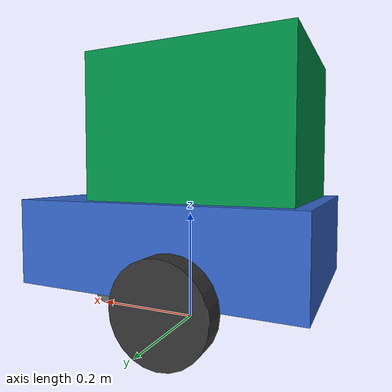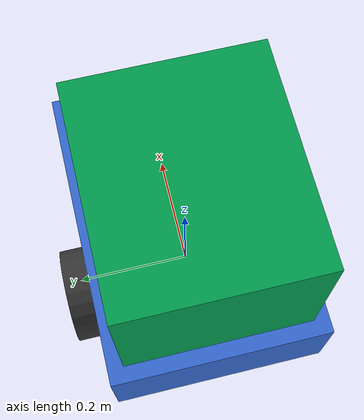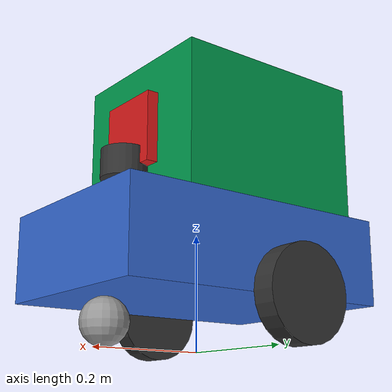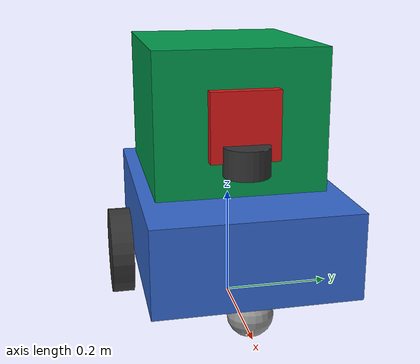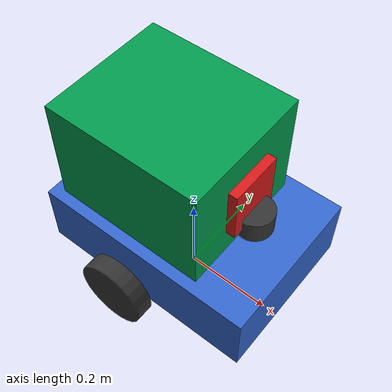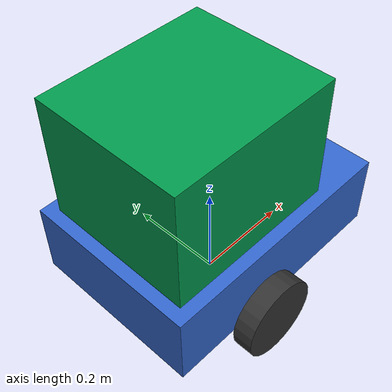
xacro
<?xml version="1.0"?>
<robot xmlns:xacro="http://www.ros.org/wiki/xacro" name="medbot">

  <!-- ==================== ARGUMENTS ==================== -->
  <xacro:arg name="use_sim" default="true"/>
  <xacro:arg name="use_ros2_control" default="true"/>

  <!-- ==================== INCLUDES ==================== -->
  <xacro:include filename="$(find medbot_description)/urdf/materials.xacro"/>
  <xacro:include filename="$(find medbot_description)/urdf/robot_core.xacro"/>
  <xacro:include filename="$(find medbot_description)/urdf/sensors/lidar.xacro"/>
  <xacro:include filename="$(find medbot_description)/urdf/sensors/camera.xacro"/>
  <xacro:include filename="$(find medbot_description)/urdf/sensors/imu.xacro"/>
  <xacro:include filename="$(find medbot_description)/urdf/gazebo_control.xacro"/>

  <!-- ==================== ROBOT ASSEMBLY ==================== -->

  <!-- Base Robot Structure -->
  <xacro:robot_core/>

  <!-- Sensor Suite -->
  <xacro:lidar_sensor parent="base_link">
    <origin xyz="0.15 0 0.30" rpy="0 0 0"/>
  </xacro:lidar_sensor>

  <xacro:camera_sensor parent="base_link">
    <origin xyz="0.20 0 0.15" rpy="0 0 0"/>
  </xacro:camera_sensor>

  <xacro:imu_sensor parent="base_link">
    <origin xyz="0 0 0.1" rpy="0 0 0"/>
  </xacro:imu_sensor>

  <!-- Gazebo Control Plugin -->
  <xacro:gazebo_control use_sim="$(arg use_sim)"/>

</robot>

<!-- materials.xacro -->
<!--
  Material Definitions for Medical Delivery Robot
  Module Owner: Abel (Modeling)

  Contains color and material properties for robot visualization.
-->
<robot xmlns:xacro="http://www.ros.org/wiki/xacro">

  <!-- ==================== RVIZ MATERIALS ==================== -->

  <!-- Primary Robot Colors -->
  <material name="white">
    <color rgba="1.0 1.0 1.0 1.0"/>
  </material>

  <material name="medbot_blue">
    <color rgba="0.2 0.4 0.8 1.0"/>
  </material>

  <material name="medbot_green">
    <color rgba="0.0 0.7 0.3 1.0"/>
  </material>

  <material name="dark_grey">
    <color rgba="0.2 0.2 0.2 1.0"/>
  </material>

  <material name="light_grey">
    <color rgba="0.6 0.6 0.6 1.0"/>
  </material>

  <material name="red">
    <color rgba="0.9 0.1 0.1 1.0"/>
  </material>

  <material name="orange">
    <color rgba="1.0 0.5 0.0 1.0"/>
  </material>

  <material name="black">
    <color rgba="0.1 0.1 0.1 1.0"/>
  </material>

  <!-- Medical Cross Color (Ethiopian Medical Theme) -->
  <material name="ethiopian_green">
    <color rgba="0.0 0.6 0.3 1.0"/>
  </material>

  <material name="ethiopian_yellow">
    <color rgba="0.98 0.75 0.0 1.0"/>
  </material>

  <material name="ethiopian_red">
    <color rgba="0.85 0.1 0.1 1.0"/>
  </material>

</robot>

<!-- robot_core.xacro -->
<robot xmlns:xacro="http://www.ros.org/wiki/xacro">

  <!-- ==================== ROBOT PARAMETERS ==================== -->

  <!-- Chassis Dimensions -->
  <xacro:property name="chassis_length" value="0.50"/>
  <xacro:property name="chassis_width" value="0.35"/>
  <xacro:property name="chassis_height" value="0.15"/>
  <xacro:property name="chassis_mass" value="15.0"/>

  <!-- Wheel Parameters -->
  <xacro:property name="wheel_radius" value="0.08"/>
  <xacro:property name="wheel_width" value="0.04"/>
  <xacro:property name="wheel_mass" value="1.0"/>
  <xacro:property name="wheel_separation" value="0.40"/>
  <xacro:property name="wheel_offset_x" value="-0.05"/>
  <xacro:property name="wheel_offset_z" value="0.0"/>

  <!-- Caster Wheel -->
  <xacro:property name="caster_radius" value="0.04"/>
  <xacro:property name="caster_mass" value="0.5"/>
  <xacro:property name="caster_offset_x" value="0.18"/>

  <!-- Delivery Compartment -->
  <xacro:property name="compartment_length" value="0.35"/>
  <xacro:property name="compartment_width" value="0.30"/>
  <xacro:property name="compartment_height" value="0.25"/>

  <!-- ==================== INERTIA MACROS ==================== -->

  <xacro:macro name="box_inertia" params="m w h d">
    <inertial>
      <mass value="${m}"/>
      <inertia ixx="${(m/12)*(h*h+d*d)}" ixy="0" ixz="0"
               iyy="${(m/12)*(w*w+d*d)}" iyz="0"
               izz="${(m/12)*(w*w+h*h)}"/>
    </inertial>
  </xacro:macro>

  <xacro:macro name="cylinder_inertia" params="m r h">
    <inertial>
      <mass value="${m}"/>
      <inertia ixx="${(m/12)*(3*r*r+h*h)}" ixy="0" ixz="0"
               iyy="${(m/12)*(3*r*r+h*h)}" iyz="0"
               izz="${(m/2)*r*r}"/>
    </inertial>
  </xacro:macro>

  <xacro:macro name="sphere_inertia" params="m r">
    <inertial>
      <mass value="${m}"/>
      <inertia ixx="${(2/5)*m*r*r}" ixy="0" ixz="0"
               iyy="${(2/5)*m*r*r}" iyz="0"
               izz="${(2/5)*m*r*r}"/>
    </inertial>
  </xacro:macro>

  <!-- ==================== WHEEL MACRO ==================== -->

  <xacro:macro name="wheel" params="prefix side reflect">
    <link name="${prefix}_wheel_link">
      <visual>
        <geometry>
          <cylinder radius="${wheel_radius}" length="${wheel_width}"/>
        </geometry>
        <origin xyz="0 0 0" rpy="${pi/2} 0 0"/>
        <material name="dark_grey"/>
      </visual>
      <collision>
        <geometry>
          <cylinder radius="${wheel_radius}" length="${wheel_width}"/>
        </geometry>
        <origin xyz="0 0 0" rpy="${pi/2} 0 0"/>
      </collision>
      <xacro:cylinder_inertia m="${wheel_mass}" r="${wheel_radius}" h="${wheel_width}"/>
    </link>

    <joint name="${prefix}_wheel_joint" type="continuous">
      <parent link="base_link"/>
      <child link="${prefix}_wheel_link"/>
      <origin xyz="${wheel_offset_x} ${reflect * wheel_separation/2} ${wheel_radius}" rpy="0 0 0"/>
      <axis xyz="0 1 0"/>
      <dynamics damping="0.2" friction="0.5"/>
    </joint>

    <!-- Gazebo friction settings for wheels -->
    <gazebo reference="${prefix}_wheel_link">
      <mu1>1.0</mu1>
      <mu2>1.0</mu2>
      <kp>500000.0</kp>
      <kd>10.0</kd>
      <material>Gazebo/DarkGrey</material>
    </gazebo>
  </xacro:macro>

  <!-- ==================== ROBOT CORE MACRO ==================== -->

  <xacro:macro name="robot_core">

    <!-- Base Footprint (Ground Plane Reference) -->
    <link name="base_footprint"/>

    <!-- Base Link (Main Chassis) -->
    <link name="base_link">
      <visual>
        <geometry>
          <box size="${chassis_length} ${chassis_width} ${chassis_height}"/>
        </geometry>
        <origin xyz="0 0 ${chassis_height/2 + wheel_radius}" rpy="0 0 0"/>
        <material name="medbot_blue"/>
      </visual>
      <collision>
        <geometry>
          <box size="${chassis_length} ${chassis_width} ${chassis_height}"/>
        </geometry>
        <origin xyz="0 0 ${chassis_height/2 + wheel_radius}" rpy="0 0 0"/>
      </collision>
      <xacro:box_inertia m="${chassis_mass}" w="${chassis_width}" h="${chassis_height}" d="${chassis_length}"/>
    </link>

    <joint name="base_footprint_joint" type="fixed">
      <parent link="base_footprint"/>
      <child link="base_link"/>
      <origin xyz="0 0 0" rpy="0 0 0"/>
    </joint>

    <!-- Delivery Compartment -->
    <link name="delivery_compartment_link">
      <visual>
        <geometry>
          <box size="${compartment_length} ${compartment_width} ${compartment_height}"/>
        </geometry>
        <origin xyz="0 0 0" rpy="0 0 0"/>
        <material name="ethiopian_green"/>
      </visual>
      <collision>
        <geometry>
          <box size="${compartment_length} ${compartment_width} ${compartment_height}"/>
        </geometry>
        <origin xyz="0 0 0" rpy="0 0 0"/>
      </collision>
      <xacro:box_inertia m="2.0" w="${compartment_width}" h="${compartment_height}" d="${compartment_length}"/>
    </link>

    <joint name="delivery_compartment_joint" type="fixed">
      <parent link="base_link"/>
      <child link="delivery_compartment_link"/>
      <origin xyz="-0.05 0 ${chassis_height + wheel_radius + compartment_height/2}" rpy="0 0 0"/>
    </joint>

    <!-- Medical Cross Marker (Visual Only) -->
    <link name="medical_cross_link">
      <visual>
        <geometry>
          <box size="0.02 0.12 0.12"/>
        </geometry>
        <origin xyz="0 0 0" rpy="0 0 0"/>
        <material name="ethiopian_red"/>
      </visual>
    </link>

    <joint name="medical_cross_joint" type="fixed">
      <parent link="delivery_compartment_link"/>
      <child link="medical_cross_link"/>
      <origin xyz="${compartment_length/2 + 0.011} 0 0" rpy="0 0 0"/>
    </joint>

    <!-- Drive Wheels -->
    <xacro:wheel prefix="left" side="left" reflect="1"/>
    <xacro:wheel prefix="right" side="right" reflect="-1"/>

    <!-- Front Caster Wheel -->
    <link name="caster_wheel_link">
      <visual>
        <geometry>
          <sphere radius="${caster_radius}"/>
        </geometry>
        <material name="light_grey"/>
      </visual>
      <collision>
        <geometry>
          <sphere radius="${caster_radius}"/>
        </geometry>
      </collision>
      <xacro:sphere_inertia m="${caster_mass}" r="${caster_radius}"/>
    </link>

    <joint name="caster_wheel_joint" type="fixed">
      <parent link="base_link"/>
      <child link="caster_wheel_link"/>
      <origin xyz="${caster_offset_x} 0 ${caster_radius}" rpy="0 0 0"/>
    </joint>

    <!-- Caster Gazebo Properties -->
    <gazebo reference="caster_wheel_link">
      <mu1>0.001</mu1>
      <mu2>0.001</mu2>
      <material>Gazebo/Grey</material>
    </gazebo>

    <!-- Base Link Gazebo Properties -->
    <gazebo reference="base_link">
      <material>Gazebo/Blue</material>
    </gazebo>

    <gazebo reference="delivery_compartment_link">
      <material>Gazebo/Green</material>
    </gazebo>

  </xacro:macro>

</robot>

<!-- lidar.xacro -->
<!--
  LiDAR Sensor Definition
  Module Owner: Abel (Modeling) / Netsanet (Obstacle Avoidance)

  2D LiDAR sensor for obstacle detection and SLAM.
  Publishes to /scan topic for navigation stack.
-->
<robot xmlns:xacro="http://www.ros.org/wiki/xacro">

  <!-- LiDAR Parameters -->
  <xacro:property name="lidar_radius" value="0.04"/>
  <xacro:property name="lidar_height" value="0.05"/>
  <xacro:property name="lidar_mass" value="0.2"/>

  <xacro:macro name="lidar_sensor" params="parent *origin">

    <!-- LiDAR Link -->
    <link name="lidar_link">
      <visual>
        <geometry>
          <cylinder radius="${lidar_radius}" length="${lidar_height}"/>
        </geometry>
        <origin xyz="0 0 0" rpy="0 0 0"/>
        <material name="dark_grey"/>
      </visual>
      <collision>
        <geometry>
          <cylinder radius="${lidar_radius}" length="${lidar_height}"/>
        </geometry>
        <origin xyz="0 0 0" rpy="0 0 0"/>
      </collision>
      <inertial>
        <mass value="${lidar_mass}"/>
        <inertia ixx="${(lidar_mass/12)*(3*lidar_radius*lidar_radius+lidar_height*lidar_height)}"
                 ixy="0" ixz="0"
                 iyy="${(lidar_mass/12)*(3*lidar_radius*lidar_radius+lidar_height*lidar_height)}"
                 iyz="0"
                 izz="${(lidar_mass/2)*lidar_radius*lidar_radius}"/>
      </inertial>
    </link>

    <joint name="lidar_joint" type="fixed">
      <parent link="${parent}"/>
      <child link="lidar_link"/>
      <xacro:insert_block name="origin"/>
    </joint>

    <!-- Gazebo LiDAR Plugin (GPU Ray Sensor) -->
    <gazebo reference="lidar_link">
      <sensor name="lidar" type="ray">
        <always_on>true</always_on>
        <visualize>true</visualize>
        <update_rate>10.0</update_rate>
        <ray>
          <scan>
            <horizontal>
              <samples>360</samples>
              <resolution>1.0</resolution>
              <min_angle>-3.14159</min_angle>
              <max_angle>3.14159</max_angle>
            </horizontal>
          </scan>
          <range>
            <min>0.15</min>
            <max>12.0</max>
            <resolution>0.01</resolution>
          </range>
          <noise>
            <type>gaussian</type>
            <mean>0.0</mean>
            <stddev>0.01</stddev>
          </noise>
        </ray>
        <plugin name="laser_controller" filename="libgazebo_ros_ray_sensor.so">
          <ros>
            <namespace>/</namespace>
            <remapping>~/out:=scan</remapping>
          </ros>
          <output_type>sensor_msgs/LaserScan</output_type>
          <frame_name>lidar_link</frame_name>
        </plugin>
      </sensor>
      <material>Gazebo/Black</material>
    </gazebo>

  </xacro:macro>

</robot>

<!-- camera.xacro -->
<robot xmlns:xacro="http://www.ros.org/wiki/xacro">

  <!-- Camera Parameters -->
  <xacro:property name="camera_size" value="0.03"/>
  <xacro:property name="camera_mass" value="0.1"/>

  <xacro:macro name="camera_sensor" params="parent *origin">

    <!-- Camera Link -->
    <link name="camera_link">
      <visual>
        <geometry>
          <box size="${camera_size} ${camera_size*2} ${camera_size}"/>
        </geometry>
        <origin xyz="0 0 0" rpy="0 0 0"/>
        <material name="dark_grey"/>
      </visual>
      <collision>
        <geometry>
          <box size="${camera_size} ${camera_size*2} ${camera_size}"/>
        </geometry>
        <origin xyz="0 0 0" rpy="0 0 0"/>
      </collision>
      <inertial>
        <mass value="${camera_mass}"/>
        <inertia ixx="${(camera_mass/12)*(camera_size*camera_size*5)}" ixy="0" ixz="0"
                 iyy="${(camera_mass/12)*(camera_size*camera_size*2)}" iyz="0"
                 izz="${(camera_mass/12)*(camera_size*camera_size*5)}"/>
      </inertial>
    </link>

    <!-- Camera Optical Frame (Z forward, X right, Y down) -->
    <link name="camera_optical_link"/>

    <joint name="camera_joint" type="fixed">
      <parent link="${parent}"/>
      <child link="camera_link"/>
      <xacro:insert_block name="origin"/>
    </joint>

    <joint name="camera_optical_joint" type="fixed">
      <parent link="camera_link"/>
      <child link="camera_optical_link"/>
      <origin xyz="0 0 0" rpy="${-pi/2} 0 ${-pi/2}"/>
    </joint>

    <!-- Gazebo Camera Plugin -->
    <gazebo reference="camera_link">
      <sensor name="camera" type="camera">
        <always_on>true</always_on>
        <visualize>true</visualize>
        <update_rate>30.0</update_rate>
        <camera>
          <horizontal_fov>1.3962634</horizontal_fov>
          <image>
            <width>640</width>
            <height>480</height>
            <format>R8G8B8</format>
          </image>
          <clip>
            <near>0.02</near>
            <far>100</far>
          </clip>
          <noise>
            <type>gaussian</type>
            <mean>0.0</mean>
            <stddev>0.007</stddev>
          </noise>
        </camera>
        <plugin name="camera_controller" filename="libgazebo_ros_camera.so">
          <ros>
            <namespace>/</namespace>
            <remapping>~/image_raw:=camera/image_raw</remapping>
            <remapping>~/camera_info:=camera/camera_info</remapping>
          </ros>
          <camera_name>camera</camera_name>
          <frame_name>camera_optical_link</frame_name>
          <hack_baseline>0.07</hack_baseline>
        </plugin>
      </sensor>
      <material>Gazebo/Black</material>
    </gazebo>

  </xacro:macro>

</robot>

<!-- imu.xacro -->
<robot xmlns:xacro="http://www.ros.org/wiki/xacro">

  <!-- IMU Parameters -->
  <xacro:property name="imu_size" value="0.02"/>
  <xacro:property name="imu_mass" value="0.05"/>

  <xacro:macro name="imu_sensor" params="parent *origin">

    <!-- IMU Link -->
    <link name="imu_link">
      <visual>
        <geometry>
          <box size="${imu_size} ${imu_size} ${imu_size}"/>
        </geometry>
        <origin xyz="0 0 0" rpy="0 0 0"/>
        <material name="orange"/>
      </visual>
      <collision>
        <geometry>
          <box size="${imu_size} ${imu_size} ${imu_size}"/>
        </geometry>
        <origin xyz="0 0 0" rpy="0 0 0"/>
      </collision>
      <inertial>
        <mass value="${imu_mass}"/>
        <inertia ixx="${(imu_mass/12)*(imu_size*imu_size*2)}" ixy="0" ixz="0"
                 iyy="${(imu_mass/12)*(imu_size*imu_size*2)}" iyz="0"
                 izz="${(imu_mass/12)*(imu_size*imu_size*2)}"/>
      </inertial>
    </link>

    <joint name="imu_joint" type="fixed">
      <parent link="${parent}"/>
      <child link="imu_link"/>
      <xacro:insert_block name="origin"/>
    </joint>

    <!-- Gazebo IMU Plugin -->
    <gazebo reference="imu_link">
      <gravity>true</gravity>
      <sensor name="imu_sensor" type="imu">
        <always_on>true</always_on>
        <update_rate>100</update_rate>
        <visualize>true</visualize>
        <imu>
          <angular_velocity>
            <x>
              <noise type="gaussian">
                <mean>0.0</mean>
                <stddev>2e-4</stddev>
              </noise>
            </x>
            <y>
              <noise type="gaussian">
                <mean>0.0</mean>
                <stddev>2e-4</stddev>
              </noise>
            </y>
            <z>
              <noise type="gaussian">
                <mean>0.0</mean>
                <stddev>2e-4</stddev>
              </noise>
            </z>
          </angular_velocity>
          <linear_acceleration>
            <x>
              <noise type="gaussian">
                <mean>0.0</mean>
                <stddev>1.7e-2</stddev>
              </noise>
            </x>
            <y>
              <noise type="gaussian">
                <mean>0.0</mean>
                <stddev>1.7e-2</stddev>
              </noise>
            </y>
            <z>
              <noise type="gaussian">
                <mean>0.0</mean>
                <stddev>1.7e-2</stddev>
              </noise>
            </z>
          </linear_acceleration>
        </imu>
        <plugin name="imu_controller" filename="libgazebo_ros_imu_sensor.so">
          <ros>
            <namespace>/</namespace>
            <remapping>~/out:=imu/data</remapping>
          </ros>
          <initial_orientation_as_reference>false</initial_orientation_as_reference>
          <frame_name>imu_link</frame_name>
        </plugin>
      </sensor>
      <material>Gazebo/Orange</material>
    </gazebo>

  </xacro:macro>

</robot>
